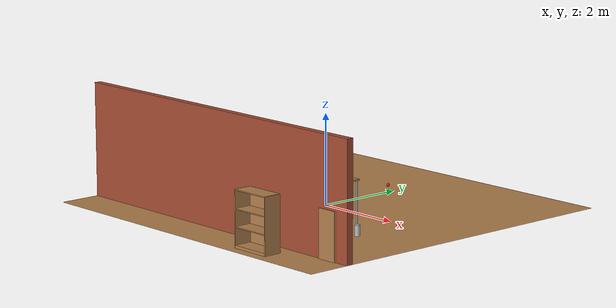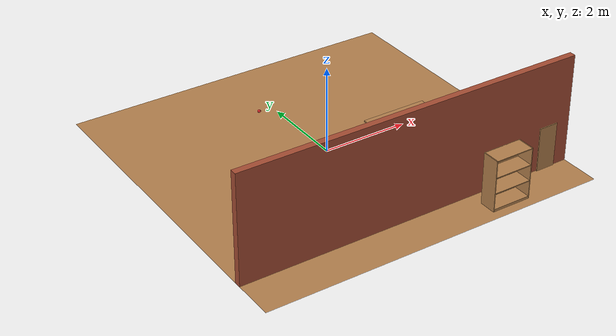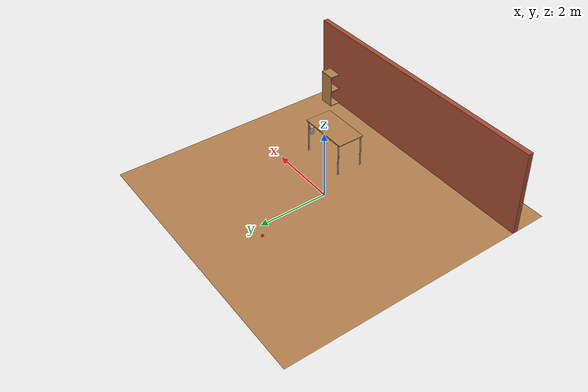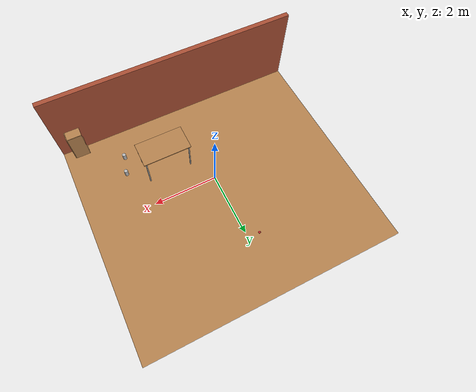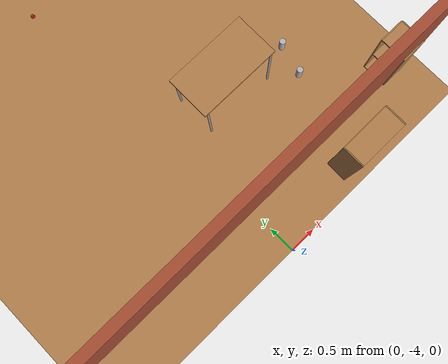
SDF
<sdf version="1.7">
 <world name="default">
  <light name="sun" type="directional">
   <pose>0 0 10 0 -0 0</pose>
   <diffuse>0.8 0.8 0.8 1</diffuse>
   <specular>0.2 0.2 0.2 1</specular>
   <attenuation>
    <range>1000</range>
    <constant>0.9</constant>
    <linear>0.01</linear>
    <quadratic>0.001</quadratic>
   </attenuation>
   <direction>-0.5 0.1 -0.9</direction>
   <spot><inner_angle>0</inner_angle><outer_angle>0</outer_angle><falloff>0</falloff></spot>
  </light>
  <gravity>0 0 -9.8</gravity>
  <magnetic_field>6e-06 2.3e-05 -4.2e-05</magnetic_field>
  <atmosphere type="adiabatic"/>
  <physics name="default_physics" default="0" type="ode">
   <max_step_size>0.001</max_step_size>
   <real_time_factor>1</real_time_factor>
   <real_time_update_rate>500</real_time_update_rate>
  </physics>
  <scene><ambient>0.4 0.4 0.4 1</ambient><background>0.7 0.7 0.7 1</background><shadows>1</shadows></scene>
  <audio><device>default</device></audio>
  <spherical_coordinates>
   <surface_model>EARTH_WGS84</surface_model>
   <latitude_deg>0</latitude_deg>
   <longitude_deg>0</longitude_deg>
   <elevation>0</elevation>
   <heading_deg>0</heading_deg>
  </spherical_coordinates>
  <model name="Arena">
   <pose>0 -3 -0 0 -0 0</pose>
   <static>1</static>
   <link name="Floor">
    <collision name="collision_floor">
     <geometry><box><size>8 8 0.01</size></box></geometry>
     <surface><friction><ode><mu>100</mu><mu2>50</mu2></ode></friction></surface>
    </collision>
    <visual name="visual_floor_0">
     <geometry><box><size>8 8 0</size></box></geometry>
     <material>
      <script><uri>file://media/materials/scripts/gazebo.material</uri><name>Gazebo/Wood</name></script>
     </material>
    </visual>
    <pose>0 3 0 0 -0 0</pose>
   </link>
   <link name="Wall_0">
    <collision name="Wall_0_Collision">
     <geometry><box><size>8 0.15 2.5</size></box></geometry>
     <pose>0 0 1.25 0 -0 0</pose>
    </collision>
    <visual name="Wall_0_Visual">
     <pose>0 0 1.25 0 -0 0</pose>
     <geometry><box><size>8 0.15 2.5</size></box></geometry>
     <material>
      <script><uri>file://media/materials/scripts/gazebo.material</uri><name>Gazebo/Bricks</name></script>
      <ambient>1 1 1 1</ambient>
     </material>
     <meta><layer>0</layer></meta>
    </visual>
   </link>
   <link name="Wall_1">
    <collision name="Wall_1_Collision">
     <geometry><box><size>8 0.15 2.5</size></box></geometry>
     <pose>0 0 1.25 0 -0 0</pose>
    </collision>
    <visual name="Wall_1_Visual">
     <pose>0 0 1.25 0 -0 0</pose>
     <geometry><box><size>8 0.15 2.5</size></box></geometry>
     <material>
      <script><uri>file://media/materials/scripts/gazebo.material</uri><name>Gazebo/Bricks</name></script>
      <ambient>1 1 1 1</ambient>
     </material>
     <meta><layer>0</layer></meta>
    </visual>
   </link>
   <link name="Wall_2">
    <collision name="Wall_2_Collision">
     <geometry><box><size>8 0.15 2.5</size></box></geometry>
     <pose>0 0 1.25 0 -0 0</pose>
    </collision>
    <visual name="Wall_2_Visual">
     <pose>0 0 1.25 0 -0 0</pose>
     <geometry><box><size>8 0.15 2.5</size></box></geometry>
     <material>
      <script><uri>file://media/materials/scripts/gazebo.material</uri><name>Gazebo/Bricks</name></script>
      <ambient>1 1 1 1</ambient>
     </material>
     <meta><layer>0</layer></meta>
    </visual>
   </link>
   <link name="Wall_3">
    <collision name="Wall_3_Collision">
     <geometry><box><size>8 0.15 2.5</size></box></geometry>
     <pose>0 0 1.25 0 -0 0</pose>
    </collision>
    <visual name="Wall_3_Visual">
     <pose>0 0 1.25 0 -0 0</pose>
     <geometry><box><size>8 0.15 2.5</size></box></geometry>
     <material>
      <script><uri>file://media/materials/scripts/gazebo.material</uri><name>Gazebo/Bricks</name></script>
      <ambient>1 1 1 1</ambient>
     </material>
     <meta><layer>0</layer></meta>
    </visual>
   </link>
  </model>
  <model name="cabinet">
   <static>1</static>
   <link name="cabinet_bottom_plate">
    <inertial>
     <pose>0 0 -1 0 -0 0</pose>
     <inertia><ixx>2.05</ixx><ixy>0</ixy><ixz>0</ixz><iyy>2.05</iyy><iyz>0</iyz><izz>2.05</izz></inertia>
     <mass>25</mass>
    </inertial>
    <collision name="cabinet_bottom_plate_geom">
     <pose>0 0 0.01 0 -0 0</pose>
     <geometry><box><size>0.45 0.45 0.02</size></box></geometry>
    </collision>
    <visual name="cabinet_bottom_plate_geom_visual">
     <pose>0 0 0.01 0 -0 0</pose>
     <geometry><box><size>0.45 0.45 0.02</size></box></geometry>
     <material>
      <script><uri>file://media/materials/scripts/gazebo.material</uri><name>Gazebo/Wood</name></script>
     </material>
    </visual>
    <collision name="cabinet_bottom_plate_geom_cabinet_back_plate">
     <pose>0.235 0 0.51 0 -0 0</pose>
     <geometry><box><size>0.02 0.45 1.02</size></box></geometry>
    </collision>
    <visual name="cabinet_bottom_plate_geom_cabinet_back_plate_visual">
     <pose>0.235 0 0.51 0 -0 0</pose>
     <geometry><box><size>0.02 0.45 1.02</size></box></geometry>
     <material>
      <script><uri>file://media/materials/scripts/gazebo.material</uri><name>Gazebo/Wood</name></script>
     </material>
    </visual>
    <collision name="cabinet_bottom_plate_geom_cabinet_left_plate">
     <pose>0 0.235 0.51 0 -0 0</pose>
     <geometry><box><size>0.45 0.02 1.02</size></box></geometry>
    </collision>
    <visual name="cabinet_bottom_plate_geom_cabinet_left_plate_visual">
     <pose>0 0.235 0.51 0 -0 0</pose>
     <geometry><box><size>0.45 0.02 1.02</size></box></geometry>
     <material>
      <script><uri>file://media/materials/scripts/gazebo.material</uri><name>Gazebo/Wood</name></script>
     </material>
    </visual>
    <collision name="cabinet_bottom_plate_geom_cabinet_middle_plate">
     <pose>0 0 0.51 0 -0 0</pose>
     <geometry><box><size>0.45 0.45 0.02</size></box></geometry>
    </collision>
    <visual name="cabinet_bottom_plate_geom_cabinet_middle_plate_visual">
     <pose>0 0 0.51 0 -0 0</pose>
     <geometry><box><size>0.45 0.45 0.02</size></box></geometry>
     <material>
      <script><uri>file://media/materials/scripts/gazebo.material</uri><name>Gazebo/Wood</name></script>
     </material>
    </visual>
    <collision name="cabinet_bottom_plate_geom_cabinet_right_plate">
     <pose>0 -0.235 0.51 0 -0 0</pose>
     <geometry><box><size>0.45 0.02 1.02</size></box></geometry>
    </collision>
    <visual name="cabinet_bottom_plate_geom_cabinet_right_plate_visual">
     <pose>0 -0.235 0.51 0 -0 0</pose>
     <geometry><box><size>0.45 0.02 1.02</size></box></geometry>
     <material>
      <script><uri>file://media/materials/scripts/gazebo.material</uri><name>Gazebo/Wood</name></script>
     </material>
    </visual>
    <collision name="cabinet_bottom_plate_geom_cabinet_top_plate">
     <pose>0 0 1.01 0 -0 0</pose>
     <geometry><box><size>0.45 0.45 0.02</size></box></geometry>
    </collision>
    <visual name="cabinet_bottom_plate_geom_cabinet_top_plate_visual">
     <pose>0 0 1.01 0 -0 0</pose>
     <geometry><box><size>0.45 0.45 0.02</size></box></geometry>
     <material>
      <script><uri>file://media/materials/scripts/gazebo.material</uri><name>Gazebo/Wood</name></script>
     </material>
    </visual>
   </link>
   <pose>3.43307 -2.85681 0 0 -0 0</pose>
  </model>
  <model name="cricket_ball">
   <link name="link">
    <pose>0 0 0.0375 0 -0 0</pose>
    <inertial>
     <mass>0.1467</mass>
     <inertia>
      <ixx>8.25187e-05</ixx>
      <ixy>0</ixy>
      <ixz>0</ixz>
      <iyy>8.25187e-05</iyy>
      <iyz>0</iyz>
      <izz>8.25187e-05</izz>
     </inertia>
    </inertial>
    <collision name="collision">
     <geometry><sphere><radius>0.0375</radius></sphere></geometry>
     <surface>
      <contact>
       <poissons_ratio>0.347</poissons_ratio>
       <elastic_modulus>8.8e+09</elastic_modulus>
       <ode><kp>100000</kp><kd>100</kd><max_vel>100</max_vel><min_depth>0.001</min_depth></ode>
      </contact>
      <friction>
       <torsional>
        <coefficient>1</coefficient>
        <use_patch_radius>0</use_patch_radius>
        <surface_radius>0.01</surface_radius>
       </torsional>
      </friction>
     </surface>
    </collision>
    <visual name="visual">
     <geometry><sphere><radius>0.0375</radius></sphere></geometry>
     <material>
      <script><uri>file://media/materials/scripts/gazebo.material</uri><name>Gazebo/Red</name></script>
     </material>
    </visual>
    <velocity_decay><linear>0</linear><angular>0.005</angular></velocity_decay>
   </link>
   <pose>-0.366763 2.18685 0.003986 0 -0 0</pose>
  </model>
  <model name="table">
   <static>1</static>
   <link name="link">
    <collision name="surface">
     <pose>0 0 1 0 -0 0</pose>
     <geometry><box><size>1.5 0.8 0.03</size></box></geometry>
     <surface><friction><ode><mu>0.6</mu><mu2>0.6</mu2></ode></friction></surface>
    </collision>
    <visual name="visual1">
     <pose>0 0 1 0 -0 0</pose>
     <geometry><box><size>1.5 0.8 0.03</size></box></geometry>
     <material>
      <script><uri>file://media/materials/scripts/gazebo.material</uri><name>Gazebo/Wood</name></script>
     </material>
    </visual>
    <collision name="front_left_leg">
     <pose>0.68 0.38 0.5 0 -0 0</pose>
     <geometry><cylinder><radius>0.02</radius><length>1</length></cylinder></geometry>
    </collision>
    <visual name="front_left_leg">
     <pose>0.68 0.38 0.5 0 -0 0</pose>
     <geometry><cylinder><radius>0.02</radius><length>1</length></cylinder></geometry>
     <material>
      <script><uri>file://media/materials/scripts/gazebo.material</uri><name>Gazebo/Grey</name></script>
     </material>
    </visual>
    <collision name="front_right_leg">
     <pose>0.68 -0.38 0.5 0 -0 0</pose>
     <geometry><cylinder><radius>0.02</radius><length>1</length></cylinder></geometry>
    </collision>
    <visual name="front_right_leg">
     <pose>0.68 -0.38 0.5 0 -0 0</pose>
     <geometry><cylinder><radius>0.02</radius><length>1</length></cylinder></geometry>
     <material>
      <script><uri>file://media/materials/scripts/gazebo.material</uri><name>Gazebo/Grey</name></script>
     </material>
    </visual>
    <collision name="back_right_leg">
     <pose>-0.68 -0.38 0.5 0 -0 0</pose>
     <geometry><cylinder><radius>0.02</radius><length>1</length></cylinder></geometry>
    </collision>
    <visual name="back_right_leg">
     <pose>-0.68 -0.38 0.5 0 -0 0</pose>
     <geometry><cylinder><radius>0.02</radius><length>1</length></cylinder></geometry>
     <material>
      <script><uri>file://media/materials/scripts/gazebo.material</uri><name>Gazebo/Grey</name></script>
     </material>
    </visual>
    <collision name="back_left_leg">
     <pose>-0.68 0.38 0.5 0 -0 0</pose>
     <geometry><cylinder><radius>0.02</radius><length>1</length></cylinder></geometry>
    </collision>
    <visual name="back_left_leg">
     <pose>-0.68 0.38 0.5 0 -0 0</pose>
     <geometry><cylinder><radius>0.02</radius><length>1</length></cylinder></geometry>
     <material>
      <script><uri>file://media/materials/scripts/gazebo.material</uri><name>Gazebo/Grey</name></script>
     </material>
    </visual>
   </link>
   <pose>1.15044 -1.18925 0 0 -0 0</pose>
  </model>
  <model name="beer">
   <link name="link">
    <pose>0 0 0.115 0 -0 0</pose>
    <inertial>
     <mass>0.39</mass>
     <inertia><ixx>0.00058</ixx><ixy>0</ixy><ixz>0</ixz><iyy>0.00058</iyy><iyz>0</iyz><izz>0.00019</izz></inertia>
    </inertial>
    <collision name="collision">
     <geometry><cylinder><radius>0.055</radius><length>0.23</length></cylinder></geometry>
    </collision>
    <visual name="visual">
     <geometry><cylinder><radius>0.055</radius><length>0.23</length></cylinder></geometry>
     <material>
      <script>
       <uri>model://beer/materials/scripts</uri>
       <uri>model://beer/materials/textures</uri>
       <name>Beer/Diffuse</name>
      </script>
     </material>
    </visual>
   </link>
   <pose>2.42159 -1.33959 0.004995 1.6e-05 8.9e-05 0.000301</pose>
  </model>
  <model name="beer_0">
   <link name="link">
    <pose>0 0 0.115 0 -0 0</pose>
    <inertial>
     <mass>0.39</mass>
     <inertia><ixx>0.00058</ixx><ixy>0</ixy><ixz>0</ixz><iyy>0.00058</iyy><iyz>0</iyz><izz>0.00019</izz></inertia>
    </inertial>
    <collision name="collision">
     <geometry><cylinder><radius>0.055</radius><length>0.23</length></cylinder></geometry>
    </collision>
    <visual name="visual">
     <geometry><cylinder><radius>0.055</radius><length>0.23</length></cylinder></geometry>
     <material>
      <script>
       <uri>model://beer/materials/scripts</uri>
       <uri>model://beer/materials/textures</uri>
       <name>Beer/Diffuse</name>
      </script>
     </material>
    </visual>
   </link>
   <pose>2.27124 -1.91366 0.004992 6e-06 2.9e-05 0.000777</pose>
  </model>
  <model name="bookshelf">
   <static>1</static>
   <link name="link">
    <inertial><mass>1</mass></inertial>
    <collision name="back">
     <pose>0 0.005 0.6 0 -0 0</pose>
     <geometry><box><size>0.9 0.01 1.2</size></box></geometry>
    </collision>
    <visual name="visual1">
     <pose>0 0.005 0.6 0 -0 0</pose>
     <geometry><box><size>0.9 0.01 1.2</size></box></geometry>
     <material>
      <script><uri>file://media/materials/scripts/gazebo.material</uri><name>Gazebo/Wood</name></script>
     </material>
    </visual>
    <collision name="left_side">
     <pose>0.45 -0.195 0.6 0 -0 0</pose>
     <geometry><box><size>0.02 0.4 1.2</size></box></geometry>
    </collision>
    <visual name="visual2">
     <pose>0.45 -0.195 0.6 0 -0 0</pose>
     <geometry><box><size>0.02 0.4 1.2</size></box></geometry>
     <material>
      <script><uri>file://media/materials/scripts/gazebo.material</uri><name>Gazebo/Wood</name></script>
     </material>
    </visual>
    <collision name="right_side">
     <pose>-0.45 -0.195 0.6 0 -0 0</pose>
     <geometry><box><size>0.02 0.4 1.2</size></box></geometry>
    </collision>
    <visual name="visual3">
     <pose>-0.45 -0.195 0.6 0 -0 0</pose>
     <geometry><box><size>0.02 0.4 1.2</size></box></geometry>
     <material>
      <script><uri>file://media/materials/scripts/gazebo.material</uri><name>Gazebo/Wood</name></script>
     </material>
    </visual>
    <collision name="bottom">
     <pose>0 -0.195 0.03 0 -0 0</pose>
     <geometry><box><size>0.88 0.4 0.06</size></box></geometry>
    </collision>
    <visual name="visual4">
     <pose>0 -0.195 0.03 0 -0 0</pose>
     <geometry><box><size>0.88 0.4 0.06</size></box></geometry>
     <material>
      <script><uri>file://media/materials/scripts/gazebo.material</uri><name>Gazebo/Wood</name></script>
     </material>
    </visual>
    <collision name="top">
     <pose>0 -0.195 1.19 0 -0 0</pose>
     <geometry><box><size>0.88 0.4 0.02</size></box></geometry>
    </collision>
    <visual name="visual5">
     <pose>0 -0.195 1.19 0 -0 0</pose>
     <geometry><box><size>0.88 0.4 0.02</size></box></geometry>
     <material>
      <script><uri>file://media/materials/scripts/gazebo.material</uri><name>Gazebo/Wood</name></script>
     </material>
    </visual>
    <collision name="low_shelf">
     <pose>0 -0.195 0.43 0 -0 0</pose>
     <geometry><box><size>0.88 0.4 0.02</size></box></geometry>
    </collision>
    <visual name="visual6">
     <pose>0 -0.195 0.43 0 -0 0</pose>
     <geometry><box><size>0.88 0.4 0.02</size></box></geometry>
     <material>
      <script><uri>file://media/materials/scripts/gazebo.material</uri><name>Gazebo/Wood</name></script>
     </material>
    </visual>
    <collision name="high_shelf">
     <pose>0 -0.195 0.8 0 -0 0</pose>
     <geometry><box><size>0.88 0.4 0.02</size></box></geometry>
    </collision>
    <visual name="visual7">
     <pose>0 -0.195 0.8 0 -0 0</pose>
     <geometry><box><size>0.88 0.4 0.02</size></box></geometry>
     <material>
      <script><uri>file://media/materials/scripts/gazebo.material</uri><name>Gazebo/Wood</name></script>
     </material>
    </visual>
   </link>
   <pose>1.94321 -3.38987 0 0 -0 0</pose>
  </model>
 </world>
</sdf>
